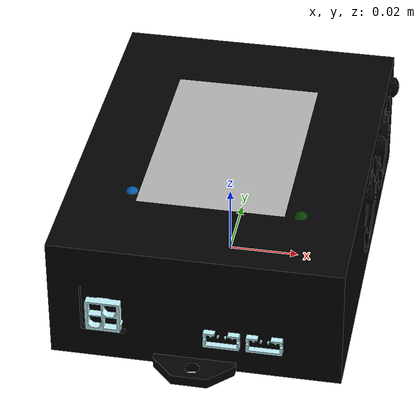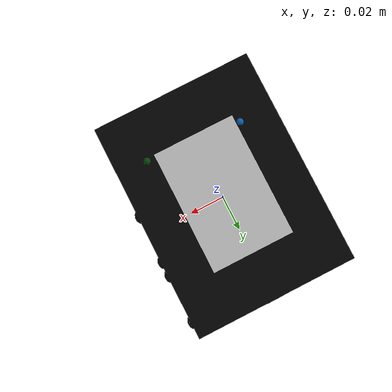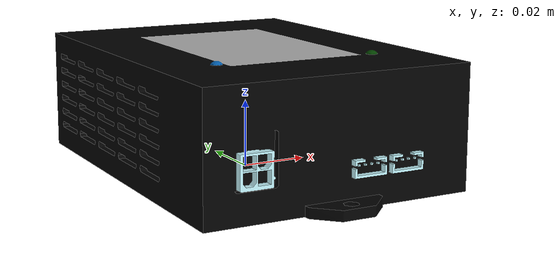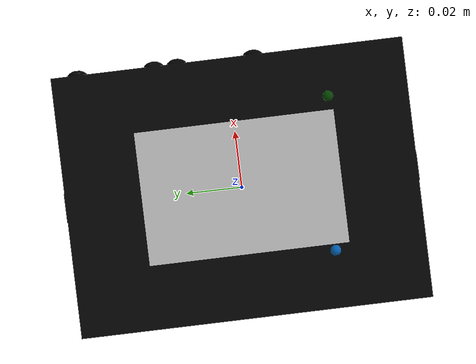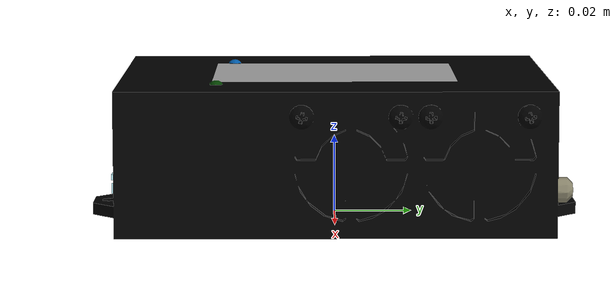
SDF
<?xml version="1.0" ?>
<sdf version="1.6">
  <model name="OC210">
    <static>true</static>
    <link name="link">
      <collision name="collision">
        <geometry>
          <mesh>
            <scale>1 1 1</scale>
            <uri>model://../meshes/OC210.dae</uri>
          </mesh>
        </geometry>
      </collision>
      <visual name="visual">
        <geometry>
          <mesh>
            <scale>1 1 1</scale>
            <uri>model://../meshes/OC210.dae</uri>
          </mesh>
        </geometry>
      </visual>
    </link>
  </model>
</sdf>
